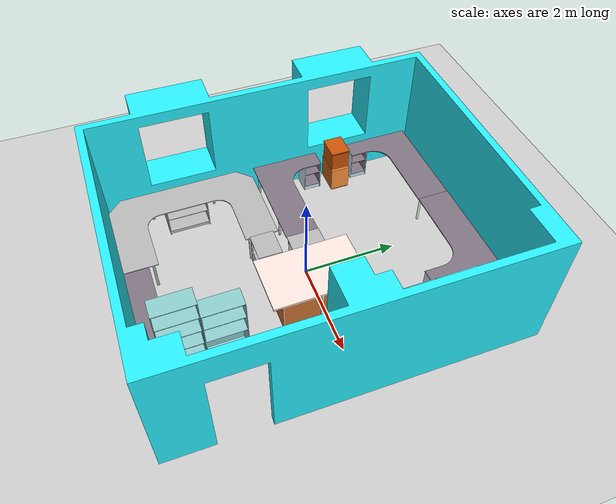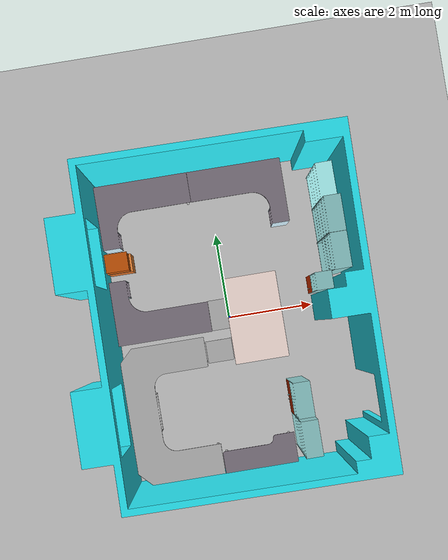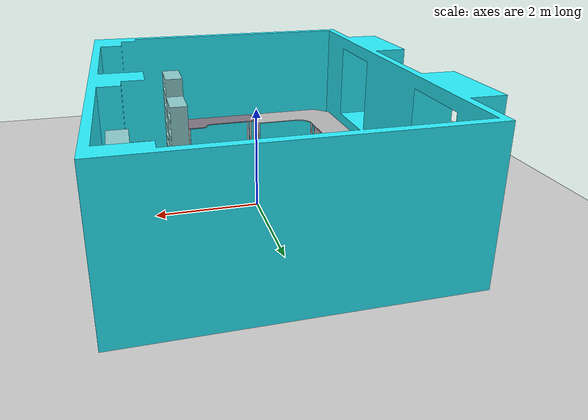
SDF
<sdf version="1.6">
 <world name="default">
  <light name="sun" type="directional">
   <pose>0 0 10 0 -0 0</pose>
   <diffuse>0.8 0.8 0.8 1</diffuse>
   <specular>0.2 0.2 0.2 1</specular>
   <attenuation>
    <range>1000</range>
    <constant>0.9</constant>
    <linear>0.01</linear>
    <quadratic>0.001</quadratic>
   </attenuation>
   <direction>-0.5 0.1 -0.9</direction>
  </light>
  <model name="ground_plane">
   <static>1</static>
   <link name="link">
    <collision name="collision">
     <geometry><plane><normal>0 0 1</normal><size>100 100</size></plane></geometry>
     <surface><friction><ode><mu>100</mu><mu2>50</mu2></ode></friction></surface>
    </collision>
    <visual name="visual">
     <cast_shadows>0</cast_shadows>
     <geometry><plane><normal>0 0 1</normal><size>100 100</size></plane></geometry>
     <material>
      <script><uri>file://media/materials/scripts/gazebo.material</uri><name>Gazebo/Grey</name></script>
     </material>
    </visual>
   </link>
  </model>
  <gravity>0 0 -9.8</gravity>
  <magnetic_field>6e-06 2.3e-05 -4.2e-05</magnetic_field>
  <atmosphere type="adiabatic"/>
  <physics name="default_physics" default="0" type="ode">
   <max_step_size>0.001</max_step_size>
   <real_time_factor>1</real_time_factor>
   <real_time_update_rate>1000</real_time_update_rate>
  </physics>
  <scene><ambient>0.4 0.4 0.4 1</ambient><background>0.7 0.7 0.7 1</background><shadows>1</shadows></scene>
  <spherical_coordinates>
   <surface_model>EARTH_WGS84</surface_model>
   <latitude_deg>0</latitude_deg>
   <longitude_deg>0</longitude_deg>
   <elevation>0</elevation>
   <heading_deg>0</heading_deg>
  </spherical_coordinates>
  <model name="Robotics_room">
   <link name="Robotics_room">
    <inertial>
     <pose>0.003105 -0.062225 1.2969 0 -0 0</pose>
     <mass>15710</mass>
     <inertia>
      <ixx>122580</ixx>
      <ixy>2047.8</ixy>
      <ixz>-4128</ixz>
      <iyy>111680</iyy>
      <iyz>-272.43</iyz>
      <izz>212140</izz>
     </inertia>
    </inertial>
    <collision name="Robotics_room_collision">
     <pose>0 0 0 1.5708 -0 0</pose>
     <geometry>
      <mesh><scale>1 1 1</scale><uri>model://Robotics_room/meshes/Robotics_room.dae</uri></mesh>
     </geometry>
    </collision>
    <visual name="Robotics_room_visual">
     <pose>0 0 0 1.5708 -0 0</pose>
     <geometry>
      <mesh><scale>1 1 1</scale><uri>model://Robotics_room/meshes/Robotics_room.dae</uri></mesh>
     </geometry>
    </visual>
   </link>
   <pose>0.073507 -0.026013 0.01 -4e-06 -0 -0.0091</pose>
  </model>
  <model name="Shelf_2_FL">
   <link name="Shelf_2_FL">
    <inertial>
     <pose>0.399 0.14621 0.79058 0 -0 0</pose>
     <mass>36.829</mass>
     <inertia>
      <ixx>10.258</ixx>
      <ixy>4.9197e-06</ixy>
      <ixz>7.9701e-06</ixz>
      <iyy>13.096</iyy>
      <iyz>0.53149</iyz>
      <izz>3.9755</izz>
     </inertia>
    </inertial>
    <collision name="Shelf_2_FL_collision">
     <pose>0 0 0 1.5708 -0 0</pose>
     <geometry><mesh><scale>1 1 1</scale><uri>model://Shelf_2_FL/meshes/Shelf_2_FL.dae</uri></mesh></geometry>
    </collision>
    <visual name="Shelf_2_FL_visual">
     <pose>0 0 0 1.5708 -0 0</pose>
     <geometry><mesh><scale>1 1 1</scale><uri>model://Shelf_2_FL/meshes/Shelf_2_FL.dae</uri></mesh></geometry>
    </visual>
   </link>
   <pose>1.11488 -1.667 -3e-06 -3e-06 -0 -1.56996</pose>
  </model>
  <model name="Shelf_FL">
   <link name="Shelf_FL">
    <inertial>
     <pose>0.398 0.18108 0.82092 0 -0 0</pose>
     <mass>33.816</mass>
     <inertia>
      <ixx>9.7591</ixx>
      <ixy>1.4536e-16</ixy>
      <ixz>-3.7964e-15</ixz>
      <iyy>12.571</iyy>
      <iyz>0.18041</iyz>
      <izz>3.6409</izz>
     </inertia>
    </inertial>
    <collision name="Shelf_FL_collision">
     <pose>0 0 0 1.5708 -0 0</pose>
     <geometry><mesh><scale>1 1 1</scale><uri>model://Shelf_FL/meshes/Shelf_FL.dae</uri></mesh></geometry>
    </collision>
    <visual name="Shelf_FL_visual">
     <pose>0 0 0 1.5708 -0 0</pose>
     <geometry><mesh><scale>1 1 1</scale><uri>model://Shelf_FL/meshes/Shelf_FL.dae</uri></mesh></geometry>
    </visual>
   </link>
   <pose>2.37021 3.02665 -1e-06 -2e-06 -0 -1.56213</pose>
  </model>
  <model name="Shelf_FR">
   <link name="Shelf_FR">
    <inertial>
     <pose>0.19929 0.15638 0.79121 0 -0 0</pose>
     <mass>26.028</mass>
     <inertia>
      <ixx>7.1088</ixx>
      <ixy>0.00022715</ixy>
      <ixz>0.00034822</ixz>
      <iyy>7.4164</iyy>
      <iyz>0.30495</iyz>
      <izz>1.0756</izz>
     </inertia>
    </inertial>
    <collision name="Shelf_FR_collision">
     <pose>0 0 0 1.5708 -0 0</pose>
     <geometry><mesh><scale>1 1 1</scale><uri>model://Shelf_FR/meshes/Shelf_FR.dae</uri></mesh></geometry>
    </collision>
    <visual name="Shelf_FR_visual">
     <pose>0 0 0 1.5708 -0 0</pose>
     <geometry><mesh><scale>1 1 1</scale><uri>model://Shelf_FR/meshes/Shelf_FR.dae</uri></mesh></geometry>
    </visual>
   </link>
   <pose>1.98007 0.654726 1e-06 -4e-06 3e-06 -1.57658</pose>
  </model>
  <model name="Shelf_ML">
   <link name="Shelf_ML">
    <inertial>
     <pose>0.398 0.1831 1.0191 0 -0 0</pose>
     <mass>47.731</mass>
     <inertia>
      <ixx>18.507</ixx>
      <ixy>1.2585e-15</ixy>
      <ixz>2.6751e-15</ixz>
      <iyy>22.206</iyy>
      <iyz>0.22676</iyz>
      <izz>4.8568</izz>
     </inertia>
    </inertial>
    <collision name="Shelf_ML_collision">
     <pose>0 0 0 1.5708 -0 0</pose>
     <geometry><mesh><scale>1 1 1</scale><uri>model://Shelf_ML/meshes/Shelf_ML.dae</uri></mesh></geometry>
    </collision>
    <visual name="Shelf_ML_visual">
     <pose>0 0 0 1.5708 -0 0</pose>
     <geometry><mesh><scale>1 1 1</scale><uri>model://Shelf_ML/meshes/Shelf_ML.dae</uri></mesh></geometry>
    </visual>
   </link>
   <pose>2.37547 2.22517 0 -2e-06 1e-06 -1.57067</pose>
  </model>
  <model name="Shelf_MR">
   <link name="Shelf_MR">
    <inertial>
     <pose>0.398 0.18355 1.0642 0 -0 0</pose>
     <mass>49.38</mass>
     <inertia>
      <ixx>18.905</ixx>
      <ixy>5.824e-16</ixy>
      <ixz>1.2904e-14</ixz>
      <iyy>22.667</iyy>
      <iyz>0.22359</iyz>
      <izz>4.9572</izz>
     </inertia>
    </inertial>
    <collision name="Shelf_MR_collision">
     <pose>0 0 0 1.5708 -0 0</pose>
     <geometry><mesh><scale>1 1 1</scale><uri>model://Shelf_MR/meshes/Shelf_MR.dae</uri></mesh></geometry>
    </collision>
    <visual name="Shelf_MR_visual">
     <pose>0 0 0 1.5708 -0 0</pose>
     <geometry><mesh><scale>1 1 1</scale><uri>model://Shelf_MR/meshes/Shelf_MR.dae</uri></mesh></geometry>
    </visual>
   </link>
   <pose>2.37595 1.42487 0 -4e-06 0 -1.57106</pose>
  </model>
  <model name="Shelf_2_FR">
   <link name="Shelf_2_FR">
    <inertial>
     <pose>0.399 0.18522 0.96951 0 -0 0</pose>
     <mass>43.612</mass>
     <inertia>
      <ixx>18.296</ixx>
      <ixy>1.6757e-15</ixy>
      <ixz>-1.9427e-14</ixz>
      <iyy>21.874</iyy>
      <iyz>0.11138</iyz>
      <izz>4.6243</izz>
     </inertia>
    </inertial>
    <collision name="Shelf_2_FR_collision">
     <pose>0 0 0 1.5708 -0 0</pose>
     <geometry><mesh><scale>1 1 1</scale><uri>model://Shelf_2_FR/meshes/Shelf_2_FR.dae</uri></mesh></geometry>
    </collision>
    <visual name="Shelf_2_FR_visual">
     <pose>0 0 0 1.5708 -0 0</pose>
     <geometry><mesh><scale>1 1 1</scale><uri>model://Shelf_2_FR/meshes/Shelf_2_FR.dae</uri></mesh></geometry>
    </visual>
   </link>
   <pose>1.11225 -2.47254 0 -5e-06 -0 -1.56863</pose>
  </model>
  <model name="Table_0">
   <link name="Table">
    <inertial>
     <pose>0 -0 0.40389 0 -0 0</pose>
     <mass>1464.6</mass>
     <inertia>
      <ixx>402.61</ixx>
      <ixy>3.4365e-14</ixy>
      <ixz>-1.3974e-14</ixz>
      <iyy>239.46</iyy>
      <iyz>2.4428e-14</iyz>
      <izz>483.74</izz>
     </inertia>
    </inertial>
    <collision name="Table_collision">
     <pose>0 0 0 1.5708 -0 0</pose>
     <geometry><mesh><scale>1 1 1</scale><uri>model://Table/meshes/Table_new.dae</uri></mesh></geometry>
    </collision>
    <visual name="Table_visual">
     <pose>0 0 0 1.5708 -0 0</pose>
     <geometry><mesh><scale>1 1 1</scale><uri>model://Table/meshes/Table_new.dae</uri></mesh></geometry>
    </visual>
   </link>
   <pose>0.587601 -0.105299 -0 -4e-06 -0 -3.13958</pose>
  </model>
  <model name="Assem_long">
   <link name="Assem_long">
    <inertial>
     <pose>-0.055611 0.058011 0.24973 0 -0 0</pose>
     <mass>191.42</mass>
     <inertia>
      <ixx>34.827</ixx>
      <ixy>8.7757e-16</ixy>
      <ixz>-2.5068e-15</ixz>
      <iyy>39.739</iyy>
      <iyz>0.24573</iyz>
      <izz>23.642</izz>
     </inertia>
    </inertial>
    <collision name="Assem_long_collision">
     <geometry><mesh><scale>1 1 1</scale><uri>model://Assem_long/meshes/Assem_long.STL</uri></mesh></geometry>
    </collision>
    <visual name="Assem_long_visual">
     <geometry><mesh><scale>1 1 1</scale><uri>model://Assem_long/meshes/Assem_long.STL</uri></mesh></geometry>
    </visual>
   </link>
   <pose>-2.36461 -1.9023 0.375774 2e-06 5e-06 1.57242</pose>
  </model>
  <model name="Desk_1_FL">
   <link name="Desk_1_FL">
    <inertial>
     <pose>-0.36701 -0.35406 -0.14663 0 -0 0</pose>
     <mass>61.693</mass>
     <inertia>
      <ixx>17.631</ixx>
      <ixy>-12.318</ixy>
      <ixz>-2.627</ixz>
      <iyy>33.311</iyy>
      <iyz>2.8376</iyz>
      <izz>45.139</izz>
     </inertia>
    </inertial>
    <collision name="Desk_1_FL_collision">
     <pose>0 0 0 1.5708 -0 0</pose>
     <geometry><mesh><scale>1 1 1</scale><uri>model://Desk_1_FL/meshes/Desk_1_FL.dae</uri></mesh></geometry>
    </collision>
    <visual name="Desk_1_FL_visual">
     <pose>0 0 0 1.5708 -0 0</pose>
     <geometry><mesh><scale>1 1 1</scale><uri>model://Desk_1_FL/meshes/Desk_1_FL.dae</uri></mesh></geometry>
    </visual>
   </link>
   <pose>-1.55216 3.12672 0.717988 -2e-06 2e-06 0.001391</pose>
  </model>
  <model name="Desk_1_FR">
   <link name="Desk_1_FR">
    <inertial>
     <pose>0.39531 -0.35406 -0.14663 0 -0 0</pose>
     <mass>61.693</mass>
     <inertia>
      <ixx>17.631</ixx>
      <ixy>12.655</ixy>
      <ixz>3.0172</ixz>
      <iyy>31.98</iyy>
      <iyz>2.8376</iyz>
      <izz>43.808</izz>
     </inertia>
    </inertial>
    <collision name="Desk_1_FR_collision">
     <pose>0 0 0 1.5708 -0 0</pose>
     <geometry><mesh><scale>1 1 1</scale><uri>model://Desk_1_FR/meshes/Desk_1_FR.dae</uri></mesh></geometry>
    </collision>
    <visual name="Desk_1_FR_visual">
     <pose>0 0 0 1.5708 -0 0</pose>
     <geometry><mesh><scale>1 1 1</scale><uri>model://Desk_1_FR/meshes/Desk_1_FR.dae</uri></mesh></geometry>
    </visual>
   </link>
   <pose>0.638219 3.12358 0.72772 -0.000467 0.009221 0.000708</pose>
  </model>
  <model name="Drawer_Light_Brown">
   <link name="Drawer_Light_Brown">
    <inertial>
     <pose>-0 -0.008544 0.2875 0 -0 0</pose>
     <mass>45</mass>
     <inertia>
      <ixx>8.159</ixx>
      <ixy>1.9709e-17</ixy>
      <ixz>-7.5566e-17</ixz>
      <iyy>6.0744</iyy>
      <iyz>-8.4879e-05</iyz>
      <izz>6.3113</izz>
     </inertia>
    </inertial>
    <collision name="Drawer_Light_Brown_collision">
     <pose>0 0 0 1.5708 -0 0</pose>
     <geometry>
      <mesh><scale>1 1 1</scale><uri>model://Drawer_Light_Brown/meshes/Drawer_Light_Brown_new.dae</uri></mesh>
     </geometry>
    </collision>
    <visual name="Drawer_Light_Brown_visual">
     <pose>0 0 0 1.5708 -0 0</pose>
     <geometry>
      <mesh><scale>1 1 1</scale><uri>model://Drawer_Light_Brown/meshes/Drawer_Light_Brown_new.dae</uri></mesh>
     </geometry>
    </visual>
   </link>
   <pose>-2.34978 1.63591 -1.8e-05 -4e-06 -0 1.56767</pose>
  </model>
  <model name="Desk_1_FR_0">
   <link name="Desk_1_FR">
    <inertial>
     <pose>0.39531 -0.35406 -0.14663 0 -0 0</pose>
     <mass>61.693</mass>
     <inertia>
      <ixx>17.631</ixx>
      <ixy>12.655</ixy>
      <ixz>3.0172</ixz>
      <iyy>31.98</iyy>
      <iyz>2.8376</iyz>
      <izz>43.808</izz>
     </inertia>
    </inertial>
    <collision name="Desk_1_FR_collision">
     <pose>0 0 0 1.5708 -0 0</pose>
     <geometry><mesh><scale>1 1 1</scale><uri>model://Desk_1_FR/meshes/Desk_1_FR.dae</uri></mesh></geometry>
    </collision>
    <visual name="Desk_1_FR_visual">
     <pose>0 0 0 1.5708 -0 0</pose>
     <geometry><mesh><scale>1 1 1</scale><uri>model://Desk_1_FR/meshes/Desk_1_FR.dae</uri></mesh></geometry>
    </visual>
   </link>
   <pose>-1.5468 0.086485 0.718 -4e-06 -0 -3.14108</pose>
  </model>
  <model name="Drawer_On_Top">
   <link name="Drawer_On_Top">
    <inertial>
     <pose>-0 -0.007675 0.23518 0 -0 0</pose>
     <mass>35</mass>
     <inertia>
      <ixx>3.9466</ixx>
      <ixy>1.5446e-16</ixy>
      <ixz>-1.3928e-16</ixz>
      <iyy>3.104</iyy>
      <iyz>0.01977</iyz>
      <izz>3.4589</izz>
     </inertia>
    </inertial>
    <collision name="Drawer_On_Top_collision">
     <pose>0 0 0 1.5708 -0 0</pose>
     <geometry>
      <mesh><scale>1 1 1</scale><uri>model://Drawer_On_Top/meshes/Drawer_On_Top.dae</uri></mesh>
     </geometry>
    </collision>
    <visual name="Drawer_On_Top_visual">
     <pose>0 0 0 1.5708 -0 0</pose>
     <geometry>
      <mesh><scale>1 1 1</scale><uri>model://Drawer_On_Top/meshes/Drawer_On_Top.dae</uri></mesh>
     </geometry>
    </visual>
   </link>
   <pose>-2.34921 1.63521 0.574982 -4e-06 -0 1.56461</pose>
  </model>
  <model name="xArm7_table_m">
   <link name="xArm7_table_m">
    <inertial>
     <pose>-1e-06 -0.000449 -0 0 -0 0</pose>
     <mass>18.25</mass>
     <inertia>
      <ixx>1.7526</ixx>
      <ixy>0.0092329</ixy>
      <ixz>-9.4464e-06</ixz>
      <iyy>1.0779</iyy>
      <iyz>-8.6208e-05</iyz>
      <izz>2.0182</izz>
     </inertia>
    </inertial>
    <collision name="xArm7_table_m_collision">
     <pose>0 0 0 1.5708 -0 0</pose>
     <geometry>
      <mesh><scale>1 1 1</scale><uri>model://xArm7_table_m/meshes/xArm7_table_m.dae</uri></mesh>
     </geometry>
    </collision>
    <visual name="xArm7_table_m_visual">
     <pose>0 0 0 1.5708 -0 0</pose>
     <geometry>
      <mesh><scale>1 1 1</scale><uri>model://xArm7_table_m/meshes/xArm7_table_m.dae</uri></mesh>
     </geometry>
    </visual>
   </link>
   <pose>-0.351022 -0.72584 0.448579 -1.5708 2e-06 -0.000109</pose>
  </model>
  <model name="Desk_3_4x">
   <link name="Desk_3_4x">
    <inertial>
     <pose>-0 0 -0.089294 0 -0 0</pose>
     <mass>24.974</mass>
     <inertia>
      <ixx>1.9138</ixx>
      <ixy>-4.1335e-16</ixy>
      <ixz>-5.0338e-16</ixz>
      <iyy>6.0372</iyy>
      <iyz>1.1077e-15</iyz>
      <izz>6.3884</izz>
     </inertia>
    </inertial>
    <collision name="Desk_3_4x_collision">
     <pose>0 0 0 1.5708 -0 0</pose>
     <geometry><mesh><scale>1 1 1</scale><uri>model://Desk_3_4x/meshes/Desk_3_4x.STL</uri></mesh></geometry>
    </collision>
    <visual name="Desk_3_4x_visual">
     <pose>0 0 0 1.5708 -0 0</pose>
     <geometry><mesh><scale>1 1 1</scale><uri>model://Desk_3_4x/meshes/Desk_3_4x.STL</uri></mesh></geometry>
    </visual>
   </link>
   <pose>0.24798 0.097884 0.717997 -3e-06 -4e-06 0.000371</pose>
  </model>
  <model name="Desk_2_L">
   <link name="Desk_2_L">
    <inertial>
     <pose>-0.057753 0.30478 -0.089376 0 -0 0</pose>
     <mass>24.515</mass>
     <inertia>
      <ixx>8.7834</ixx>
      <ixy>0.55953</ixy>
      <ixz>0.019316</ixz>
      <iyy>1.5784</iyy>
      <iyz>-0.092859</iyz>
      <izz>8.8425</izz>
     </inertia>
    </inertial>
    <collision name="Desk_2_L_collision">
     <pose>0 0 0 1.5708 -0 0</pose>
     <geometry><mesh><scale>1 1 1</scale><uri>model://Desk_2_L/meshes/Desk_2_L.dae</uri></mesh></geometry>
    </collision>
    <visual name="Desk_2_L_visual">
     <pose>0 0 0 1.5708 -0 0</pose>
     <geometry><mesh><scale>1 1 1</scale><uri>model://Desk_2_L/meshes/Desk_2_L.dae</uri></mesh></geometry>
    </visual>
   </link>
   <pose>0.543001 -3.20597 0.713998 -7e-06 1e-06 1.5717</pose>
  </model>
 </world>
</sdf>
